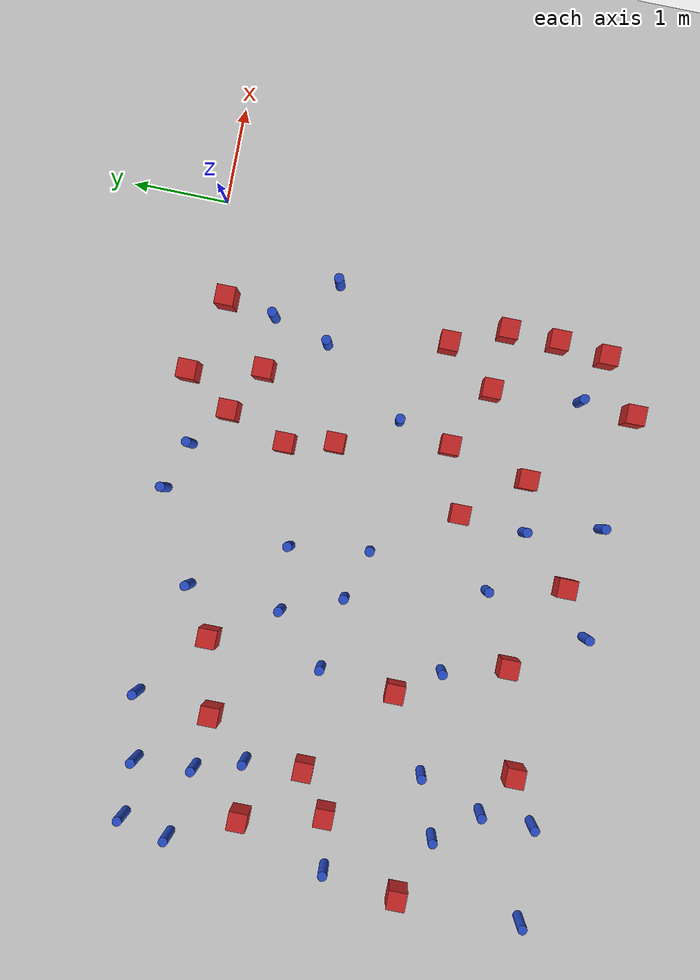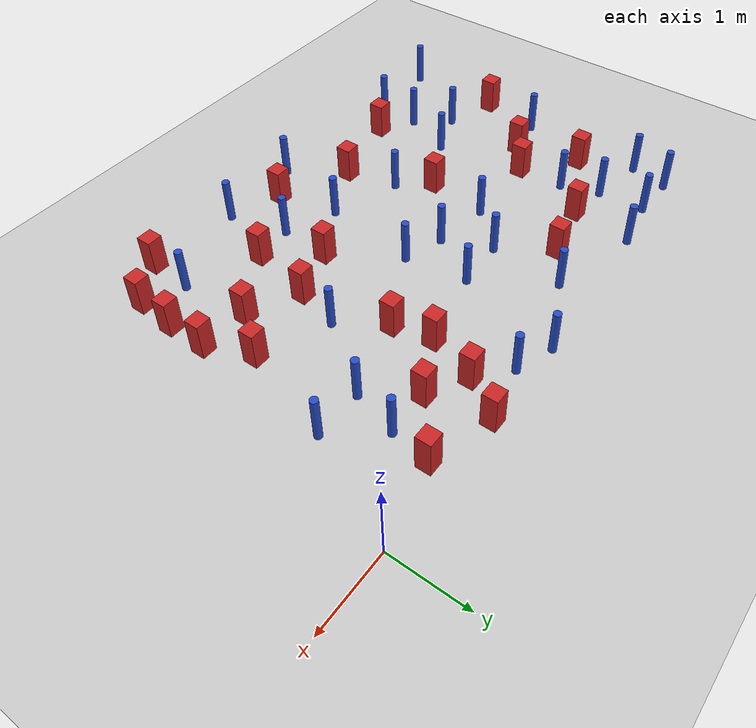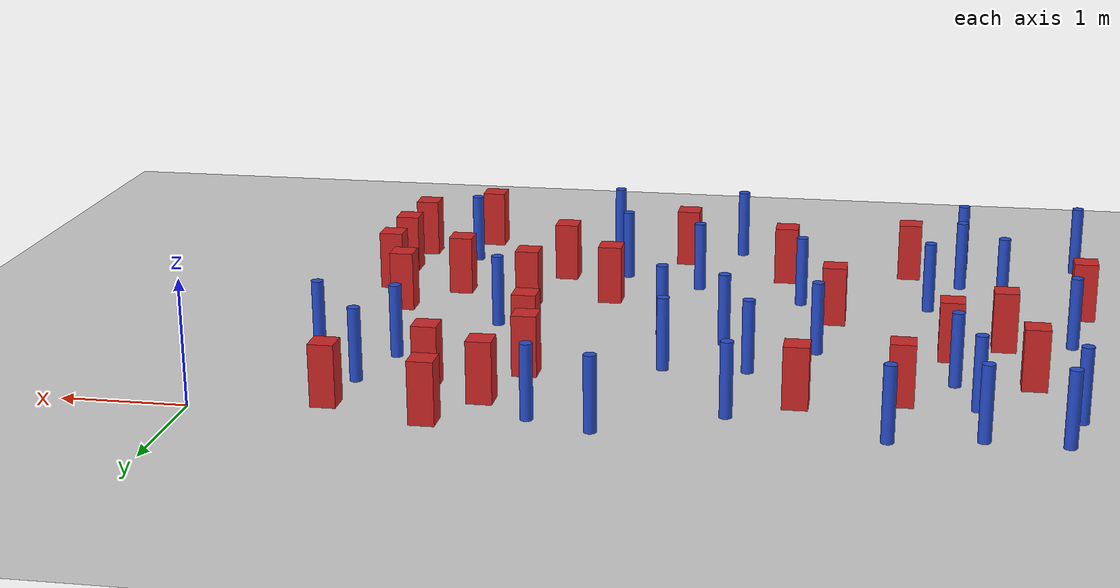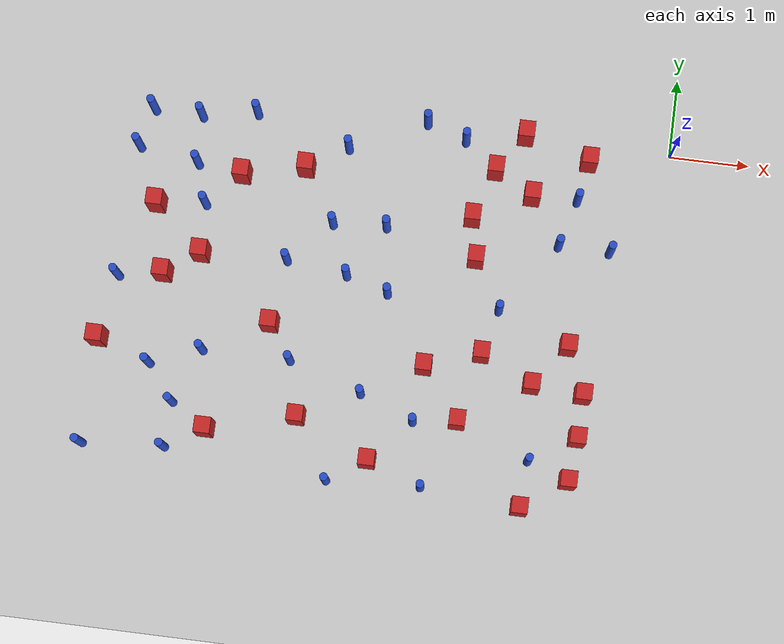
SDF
<sdf version="1.6">
 <world name="default">
  <model name="ground_plane">
   <static>1</static>
   <link name="link">
    <collision name="collision">
     <geometry><plane><normal>0 0 1</normal><size>100 100</size></plane></geometry>
     <surface><friction><ode><mu>100</mu><mu2>50</mu2></ode></friction></surface>
    </collision>
    <visual name="visual">
     <cast_shadows>0</cast_shadows>
     <geometry><plane><normal>0 0 1</normal><size>100 100</size></plane></geometry>
     <material>
      <ambient>1.0 1.0 1.0 1.0</ambient>
      <diffuse>0.8 0.8 0.8 1.0</diffuse>
      <specular>0.01 0.01 0.01 1.000000</specular>
     </material>
    </visual>
   </link>
  </model>
  <model name="square_post_obstacle3">
   <static>true</static>
   <pose>-0.789458256062 -3.69819431889 1.91545236811e-07 -7.35059704564e-06 1.12565212e-07 2.39332434364e-05</pose>
   <link name="link">
    <pose>0 0 0.25 0 -0 0</pose>
    <inertial>
     <mass>100</mass>
     <inertia>
      <ixx>0.166667</ixx>
      <ixy>0</ixy>
      <ixz>0</ixz>
      <iyy>0.166667</iyy>
      <iyz>0</iyz>
      <izz>0.166667</izz>
     </inertia>
    </inertial>
    <collision name="collision"><geometry><box><size>.2 .2 .5</size></box></geometry></collision>
    <visual name="visual">
     <geometry><box><size>.2 .2 .5</size></box></geometry>
     <material>
      <script><name>Gazebo/Red</name><uri>file://media/materials/scripts/gazebo.material</uri></script>
     </material>
    </visual>
   </link>
  </model>
  <model name="pole_obstacle7">
   <static>true</static>
   <pose>-5.22169933292 -0.105891624852 7.38925637345e-09 -8.47170692799e-08 1.24976765039e-08 -1.74513093019e-07</pose>
   <link name="link">
    <pose>0 0 0.3 0 -0 0</pose>
    <inertial>
     <mass>1</mass>
     <inertia><ixx>0.145833</ixx><ixy>0</ixy><ixz>0</ixz><iyy>0.145833</iyy><iyz>0</iyz><izz>0.125</izz></inertia>
    </inertial>
    <collision name="collision">
     <geometry><cylinder><radius>0.05</radius><length>.6</length></cylinder></geometry>
    </collision>
    <visual name="visual">
     <geometry><cylinder><radius>0.05</radius><length>.6</length></cylinder></geometry>
     <material>
      <script><name>Gazebo/Blue</name><uri>file://media/materials/scripts/gazebo.material</uri></script>
     </material>
    </visual>
   </link>
  </model>
  <model name="square_post_obstacle13">
   <static>true</static>
   <pose>-1.41700734164 -3.11351786145 1.91545236811e-07 -7.35059704564e-06 1.12565212e-07 2.39332434364e-05</pose>
   <link name="link">
    <pose>0 0 0.25 0 -0 0</pose>
    <inertial>
     <mass>100</mass>
     <inertia>
      <ixx>0.166667</ixx>
      <ixy>0</ixy>
      <ixz>0</ixz>
      <iyy>0.166667</iyy>
      <iyz>0</iyz>
      <izz>0.166667</izz>
     </inertia>
    </inertial>
    <collision name="collision"><geometry><box><size>.2 .2 .5</size></box></geometry></collision>
    <visual name="visual">
     <geometry><box><size>.2 .2 .5</size></box></geometry>
     <material>
      <script><name>Gazebo/Red</name><uri>file://media/materials/scripts/gazebo.material</uri></script>
     </material>
    </visual>
   </link>
  </model>
  <model name="square_post_obstacle22">
   <static>true</static>
   <pose>-2.26513360312 -3.66411039901 1.91545236811e-07 -7.35059704564e-06 1.12565212e-07 2.39332434364e-05</pose>
   <link name="link">
    <pose>0 0 0.25 0 -0 0</pose>
    <inertial>
     <mass>100</mass>
     <inertia>
      <ixx>0.166667</ixx>
      <ixy>0</ixy>
      <ixz>0</ixz>
      <iyy>0.166667</iyy>
      <iyz>0</iyz>
      <izz>0.166667</izz>
     </inertia>
    </inertial>
    <collision name="collision"><geometry><box><size>.2 .2 .5</size></box></geometry></collision>
    <visual name="visual">
     <geometry><box><size>.2 .2 .5</size></box></geometry>
     <material>
      <script><name>Gazebo/Red</name><uri>file://media/materials/scripts/gazebo.material</uri></script>
     </material>
    </visual>
   </link>
  </model>
  <model name="pole_obstacle14">
   <static>true</static>
   <pose>-2.80480990829 -3.74324165392 7.38925637345e-09 -8.47170692798e-08 1.24976764939e-08 -1.74513093025e-07</pose>
   <link name="link">
    <pose>0 0 0.3 0 -0 0</pose>
    <inertial>
     <mass>1</mass>
     <inertia><ixx>0.145833</ixx><ixy>0</ixy><ixz>0</ixz><iyy>0.145833</iyy><iyz>0</iyz><izz>0.125</izz></inertia>
    </inertial>
    <collision name="collision">
     <geometry><cylinder><radius>0.05</radius><length>.6</length></cylinder></geometry>
    </collision>
    <visual name="visual">
     <geometry><cylinder><radius>0.05</radius><length>.6</length></cylinder></geometry>
     <material>
      <script><name>Gazebo/Blue</name><uri>file://media/materials/scripts/gazebo.material</uri></script>
     </material>
    </visual>
   </link>
  </model>
  <model name="pole_obstacle17">
   <static>true</static>
   <pose>-1.91725916529 -2.24138637136 7.38925637345e-09 -8.47170692799e-08 1.24976765053e-08 -1.74513093017e-07</pose>
   <link name="link">
    <pose>0 0 0.3 0 -0 0</pose>
    <inertial>
     <mass>1</mass>
     <inertia><ixx>0.145833</ixx><ixy>0</ixy><ixz>0</ixz><iyy>0.145833</iyy><iyz>0</iyz><izz>0.125</izz></inertia>
    </inertial>
    <collision name="collision">
     <geometry><cylinder><radius>0.05</radius><length>.6</length></cylinder></geometry>
    </collision>
    <visual name="visual">
     <geometry><cylinder><radius>0.05</radius><length>.6</length></cylinder></geometry>
     <material>
      <script><name>Gazebo/Blue</name><uri>file://media/materials/scripts/gazebo.material</uri></script>
     </material>
    </visual>
   </link>
  </model>
  <model name="pole_obstacle18">
   <static>true</static>
   <pose>-6.63146007485 -0.71086996158 7.38925637345e-09 -8.47170692799e-08 1.24976765038e-08 -1.74513093018e-07</pose>
   <link name="link">
    <pose>0 0 0.3 0 -0 0</pose>
    <inertial>
     <mass>1</mass>
     <inertia><ixx>0.145833</ixx><ixy>0</ixy><ixz>0</ixz><iyy>0.145833</iyy><iyz>0</iyz><izz>0.125</izz></inertia>
    </inertial>
    <collision name="collision">
     <geometry><cylinder><radius>0.05</radius><length>.6</length></cylinder></geometry>
    </collision>
    <visual name="visual">
     <geometry><cylinder><radius>0.05</radius><length>.6</length></cylinder></geometry>
     <material>
      <script><name>Gazebo/Blue</name><uri>file://media/materials/scripts/gazebo.material</uri></script>
     </material>
    </visual>
   </link>
  </model>
  <model name="square_post_obstacle40">
   <static>true</static>
   <pose>-2.16263154472 -0.473142422719 1.91545236811e-07 -7.35059704564e-06 1.12565212e-07 2.39332434364e-05</pose>
   <link name="link">
    <pose>0 0 0.25 0 -0 0</pose>
    <inertial>
     <mass>100</mass>
     <inertia>
      <ixx>0.166667</ixx>
      <ixy>0</ixy>
      <ixz>0</ixz>
      <iyy>0.166667</iyy>
      <iyz>0</iyz>
      <izz>0.166667</izz>
     </inertia>
    </inertial>
    <collision name="collision"><geometry><box><size>.2 .2 .5</size></box></geometry></collision>
    <visual name="visual">
     <geometry><box><size>.2 .2 .5</size></box></geometry>
     <material>
      <script><name>Gazebo/Red</name><uri>file://media/materials/scripts/gazebo.material</uri></script>
     </material>
    </visual>
   </link>
  </model>
  <model name="square_post_obstacle54">
   <static>true</static>
   <pose>-4.22077732665 -3.85012642993 1.91545236811e-07 -7.35059704564e-06 1.12565212e-07 2.39332434364e-05</pose>
   <link name="link">
    <pose>0 0 0.25 0 -0 0</pose>
    <inertial>
     <mass>100</mass>
     <inertia>
      <ixx>0.166667</ixx>
      <ixy>0</ixy>
      <ixz>0</ixz>
      <iyy>0.166667</iyy>
      <iyz>0</iyz>
      <izz>0.166667</izz>
     </inertia>
    </inertial>
    <collision name="collision"><geometry><box><size>.2 .2 .5</size></box></geometry></collision>
    <visual name="visual">
     <geometry><box><size>.2 .2 .5</size></box></geometry>
     <material>
      <script><name>Gazebo/Red</name><uri>file://media/materials/scripts/gazebo.material</uri></script>
     </material>
    </visual>
   </link>
  </model>
  <model name="square_post_obstacle57">
   <static>true</static>
   <pose>-4.70037765385 -2.74377616056 1.91545236811e-07 -7.35059704564e-06 1.12565212e-07 2.39332434364e-05</pose>
   <link name="link">
    <pose>0 0 0.25 0 -0 0</pose>
    <inertial>
     <mass>100</mass>
     <inertia>
      <ixx>0.166667</ixx>
      <ixy>0</ixy>
      <ixz>0</ixz>
      <iyy>0.166667</iyy>
      <iyz>0</iyz>
      <izz>0.166667</izz>
     </inertia>
    </inertial>
    <collision name="collision"><geometry><box><size>.2 .2 .5</size></box></geometry></collision>
    <visual name="visual">
     <geometry><box><size>.2 .2 .5</size></box></geometry>
     <material>
      <script><name>Gazebo/Red</name><uri>file://media/materials/scripts/gazebo.material</uri></script>
     </material>
    </visual>
   </link>
  </model>
  <model name="pole_obstacle60">
   <static>true</static>
   <pose>-5.87558136819 -0.84293087153 7.38925637345e-09 -8.47170692799e-08 1.24976765038e-08 -1.74513093018e-07</pose>
   <link name="link">
    <pose>0 0 0.3 0 -0 0</pose>
    <inertial>
     <mass>1</mass>
     <inertia><ixx>0.145833</ixx><ixy>0</ixy><ixz>0</ixz><iyy>0.145833</iyy><iyz>0</iyz><izz>0.125</izz></inertia>
    </inertial>
    <collision name="collision">
     <geometry><cylinder><radius>0.05</radius><length>.6</length></cylinder></geometry>
    </collision>
    <visual name="visual">
     <geometry><cylinder><radius>0.05</radius><length>.6</length></cylinder></geometry>
     <material>
      <script><name>Gazebo/Blue</name><uri>file://media/materials/scripts/gazebo.material</uri></script>
     </material>
    </visual>
   </link>
  </model>
  <model name="square_post_obstacle63">
   <static>true</static>
   <pose>-4.51954298545 -0.729150470644 1.91545236811e-07 -7.35059704564e-06 1.12565212e-07 2.39332434364e-05</pose>
   <link name="link">
    <pose>0 0 0.25 0 -0 0</pose>
    <inertial>
     <mass>100</mass>
     <inertia>
      <ixx>0.166667</ixx>
      <ixy>0</ixy>
      <ixz>0</ixz>
      <iyy>0.166667</iyy>
      <iyz>0</iyz>
      <izz>0.166667</izz>
     </inertia>
    </inertial>
    <collision name="collision"><geometry><box><size>.2 .2 .5</size></box></geometry></collision>
    <visual name="visual">
     <geometry><box><size>.2 .2 .5</size></box></geometry>
     <material>
      <script><name>Gazebo/Red</name><uri>file://media/materials/scripts/gazebo.material</uri></script>
     </material>
    </visual>
   </link>
  </model>
  <model name="pole_obstacle61">
   <static>true</static>
   <pose>-5.76070533934 -3.85977856652 7.38925637345e-09 -8.47170692798e-08 1.24976764937e-08 -1.74513093023e-07</pose>
   <link name="link">
    <pose>0 0 0.3 0 -0 0</pose>
    <inertial>
     <mass>1</mass>
     <inertia><ixx>0.145833</ixx><ixy>0</ixy><ixz>0</ixz><iyy>0.145833</iyy><iyz>0</iyz><izz>0.125</izz></inertia>
    </inertial>
    <collision name="collision">
     <geometry><cylinder><radius>0.05</radius><length>.6</length></cylinder></geometry>
    </collision>
    <visual name="visual">
     <geometry><cylinder><radius>0.05</radius><length>.6</length></cylinder></geometry>
     <material>
      <script><name>Gazebo/Blue</name><uri>file://media/materials/scripts/gazebo.material</uri></script>
     </material>
    </visual>
   </link>
  </model>
  <model name="pole_obstacle63">
   <static>true</static>
   <pose>-4.02394877277 -0.415221039321 7.38925637345e-09 -8.47170692799e-08 1.24976765016e-08 -1.74513093019e-07</pose>
   <link name="link">
    <pose>0 0 0.3 0 -0 0</pose>
    <inertial>
     <mass>1</mass>
     <inertia><ixx>0.145833</ixx><ixy>0</ixy><ixz>0</ixz><iyy>0.145833</iyy><iyz>0</iyz><izz>0.125</izz></inertia>
    </inertial>
    <collision name="collision">
     <geometry><cylinder><radius>0.05</radius><length>.6</length></cylinder></geometry>
    </collision>
    <visual name="visual">
     <geometry><cylinder><radius>0.05</radius><length>.6</length></cylinder></geometry>
     <material>
      <script><name>Gazebo/Blue</name><uri>file://media/materials/scripts/gazebo.material</uri></script>
     </material>
    </visual>
   </link>
  </model>
  <model name="square_post_obstacle66">
   <static>true</static>
   <pose>-2.38029002942 -1.11211313398 1.91545236811e-07 -7.35059704564e-06 1.12565212e-07 2.39332434364e-05</pose>
   <link name="link">
    <pose>0 0 0.25 0 -0 0</pose>
    <inertial>
     <mass>100</mass>
     <inertia>
      <ixx>0.166667</ixx>
      <ixy>0</ixy>
      <ixz>0</ixz>
      <iyy>0.166667</iyy>
      <iyz>0</iyz>
      <izz>0.166667</izz>
     </inertia>
    </inertial>
    <collision name="collision"><geometry><box><size>.2 .2 .5</size></box></geometry></collision>
    <visual name="visual">
     <geometry><box><size>.2 .2 .5</size></box></geometry>
     <material>
      <script><name>Gazebo/Red</name><uri>file://media/materials/scripts/gazebo.material</uri></script>
     </material>
    </visual>
   </link>
  </model>
  <model name="pole_obstacle68">
   <static>true</static>
   <pose>-6.79056227725 -4.48885861719 7.38925637345e-09 -8.47170692796e-08 1.24976764786e-08 -1.74513093032e-07</pose>
   <link name="link">
    <pose>0 0 0.3 0 -0 0</pose>
    <inertial>
     <mass>1</mass>
     <inertia><ixx>0.145833</ixx><ixy>0</ixy><ixz>0</ixz><iyy>0.145833</iyy><iyz>0</iyz><izz>0.125</izz></inertia>
    </inertial>
    <collision name="collision">
     <geometry><cylinder><radius>0.05</radius><length>.6</length></cylinder></geometry>
    </collision>
    <visual name="visual">
     <geometry><cylinder><radius>0.05</radius><length>.6</length></cylinder></geometry>
     <material>
      <script><name>Gazebo/Blue</name><uri>file://media/materials/scripts/gazebo.material</uri></script>
     </material>
    </visual>
   </link>
  </model>
  <model name="pole_obstacle71">
   <static>true</static>
   <pose>-3.84267312091 -2.03474733109 7.38925637345e-09 -8.471706928e-08 1.2497676511e-08 -1.74513093015e-07</pose>
   <link name="link">
    <pose>0 0 0.3 0 -0 0</pose>
    <inertial>
     <mass>1</mass>
     <inertia><ixx>0.145833</ixx><ixy>0</ixy><ixz>0</ixz><iyy>0.145833</iyy><iyz>0</iyz><izz>0.125</izz></inertia>
    </inertial>
    <collision name="collision">
     <geometry><cylinder><radius>0.05</radius><length>.6</length></cylinder></geometry>
    </collision>
    <visual name="visual">
     <geometry><cylinder><radius>0.05</radius><length>.6</length></cylinder></geometry>
     <material>
      <script><name>Gazebo/Blue</name><uri>file://media/materials/scripts/gazebo.material</uri></script>
     </material>
    </visual>
   </link>
  </model>
  <model name="pole_obstacle75">
   <static>true</static>
   <pose>-3.76436221645 -4.58405866413 7.38925637345e-09 -8.47170692794e-08 1.24976764468e-08 -1.7451309304e-07</pose>
   <link name="link">
    <pose>0 0 0.3 0 -0 0</pose>
    <inertial>
     <mass>1</mass>
     <inertia><ixx>0.145833</ixx><ixy>0</ixy><ixz>0</ixz><iyy>0.145833</iyy><iyz>0</iyz><izz>0.125</izz></inertia>
    </inertial>
    <collision name="collision">
     <geometry><cylinder><radius>0.05</radius><length>.6</length></cylinder></geometry>
    </collision>
    <visual name="visual">
     <geometry><cylinder><radius>0.05</radius><length>.6</length></cylinder></geometry>
     <material>
      <script><name>Gazebo/Blue</name><uri>file://media/materials/scripts/gazebo.material</uri></script>
     </material>
    </visual>
   </link>
  </model>
  <model name="pole_obstacle79">
   <static>true</static>
   <pose>-4.603959515 -1.93403306076 7.38925637345e-09 -8.471706928e-08 1.24976765134e-08 -1.74513093015e-07</pose>
   <link name="link">
    <pose>0 0 0.3 0 -0 0</pose>
    <inertial>
     <mass>1</mass>
     <inertia><ixx>0.145833</ixx><ixy>0</ixy><ixz>0</ixz><iyy>0.145833</iyy><iyz>0</iyz><izz>0.125</izz></inertia>
    </inertial>
    <collision name="collision">
     <geometry><cylinder><radius>0.05</radius><length>.6</length></cylinder></geometry>
    </collision>
    <visual name="visual">
     <geometry><cylinder><radius>0.05</radius><length>.6</length></cylinder></geometry>
     <material>
      <script><name>Gazebo/Blue</name><uri>file://media/materials/scripts/gazebo.material</uri></script>
     </material>
    </visual>
   </link>
  </model>
  <model name="square_post_obstacle79">
   <static>true</static>
   <pose>-1.02066085679 -2.58645340985 1.91545236811e-07 -7.35059704564e-06 1.12565212e-07 2.39332434364e-05</pose>
   <link name="link">
    <pose>0 0 0.25 0 -0 0</pose>
    <inertial>
     <mass>100</mass>
     <inertia>
      <ixx>0.166667</ixx>
      <ixy>0</ixy>
      <ixz>0</ixz>
      <iyy>0.166667</iyy>
      <iyz>0</iyz>
      <izz>0.166667</izz>
     </inertia>
    </inertial>
    <collision name="collision"><geometry><box><size>.2 .2 .5</size></box></geometry></collision>
    <visual name="visual">
     <geometry><box><size>.2 .2 .5</size></box></geometry>
     <material>
      <script><name>Gazebo/Red</name><uri>file://media/materials/scripts/gazebo.material</uri></script>
     </material>
    </visual>
   </link>
  </model>
  <model name="pole_obstacle81">
   <static>true</static>
   <pose>-5.91094092325 -0.225091668777 7.38925637345e-09 -8.471706928e-08 1.24976765089e-08 -1.74513093017e-07</pose>
   <link name="link">
    <pose>0 0 0.3 0 -0 0</pose>
    <inertial>
     <mass>1</mass>
     <inertia><ixx>0.145833</ixx><ixy>0</ixy><ixz>0</ixz><iyy>0.145833</iyy><iyz>0</iyz><izz>0.125</izz></inertia>
    </inertial>
    <collision name="collision">
     <geometry><cylinder><radius>0.05</radius><length>.6</length></cylinder></geometry>
    </collision>
    <visual name="visual">
     <geometry><cylinder><radius>0.05</radius><length>.6</length></cylinder></geometry>
     <material>
      <script><name>Gazebo/Blue</name><uri>file://media/materials/scripts/gazebo.material</uri></script>
     </material>
    </visual>
   </link>
  </model>
  <model name="pole_obstacle87">
   <static>true</static>
   <pose>-3.48043219241 -3.47983917636 7.38925637345e-09 -8.47170692798e-08 1.24976764939e-08 -1.74513093025e-07</pose>
   <link name="link">
    <pose>0 0 0.3 0 -0 0</pose>
    <inertial>
     <mass>1</mass>
     <inertia><ixx>0.145833</ixx><ixy>0</ixy><ixz>0</ixz><iyy>0.145833</iyy><iyz>0</iyz><izz>0.125</izz></inertia>
    </inertial>
    <collision name="collision">
     <geometry><cylinder><radius>0.05</radius><length>.6</length></cylinder></geometry>
    </collision>
    <visual name="visual">
     <geometry><cylinder><radius>0.05</radius><length>.6</length></cylinder></geometry>
     <material>
      <script><name>Gazebo/Blue</name><uri>file://media/materials/scripts/gazebo.material</uri></script>
     </material>
    </visual>
   </link>
  </model>
  <model name="pole_obstacle89">
   <static>true</static>
   <pose>-6.65588495522 -2.37620966974 7.38925637345e-09 -8.47170692798e-08 1.24976764937e-08 -1.74513093023e-07</pose>
   <link name="link">
    <pose>0 0 0.3 0 -0 0</pose>
    <inertial>
     <mass>1</mass>
     <inertia><ixx>0.145833</ixx><ixy>0</ixy><ixz>0</ixz><iyy>0.145833</iyy><iyz>0</iyz><izz>0.125</izz></inertia>
    </inertial>
    <collision name="collision">
     <geometry><cylinder><radius>0.05</radius><length>.6</length></cylinder></geometry>
    </collision>
    <visual name="visual">
     <geometry><cylinder><radius>0.05</radius><length>.6</length></cylinder></geometry>
     <material>
      <script><name>Gazebo/Blue</name><uri>file://media/materials/scripts/gazebo.material</uri></script>
     </material>
    </visual>
   </link>
  </model>
  <model name="square_post_obstacle87">
   <static>true</static>
   <pose>-2.07019115002 -2.80343000493 1.91545236811e-07 -7.35059704564e-06 1.12565212e-07 2.39332434364e-05</pose>
   <link name="link">
    <pose>0 0 0.25 0 -0 0</pose>
    <inertial>
     <mass>100</mass>
     <inertia>
      <ixx>0.166667</ixx>
      <ixy>0</ixy>
      <ixz>0</ixz>
      <iyy>0.166667</iyy>
      <iyz>0</iyz>
      <izz>0.166667</izz>
     </inertia>
    </inertial>
    <collision name="collision"><geometry><box><size>.2 .2 .5</size></box></geometry></collision>
    <visual name="visual">
     <geometry><box><size>.2 .2 .5</size></box></geometry>
     <material>
      <script><name>Gazebo/Red</name><uri>file://media/materials/scripts/gazebo.material</uri></script>
     </material>
    </visual>
   </link>
  </model>
  <model name="pole_obstacle104">
   <static>true</static>
   <pose>-2.57503978573 -0.140216862907 7.38925637345e-09 -8.471706928e-08 1.24976765208e-08 -1.7451309301e-07</pose>
   <link name="link">
    <pose>0 0 0.3 0 -0 0</pose>
    <inertial>
     <mass>1</mass>
     <inertia><ixx>0.145833</ixx><ixy>0</ixy><ixz>0</ixz><iyy>0.145833</iyy><iyz>0</iyz><izz>0.125</izz></inertia>
    </inertial>
    <collision name="collision">
     <geometry><cylinder><radius>0.05</radius><length>.6</length></cylinder></geometry>
    </collision>
    <visual name="visual">
     <geometry><cylinder><radius>0.05</radius><length>.6</length></cylinder></geometry>
     <material>
      <script><name>Gazebo/Blue</name><uri>file://media/materials/scripts/gazebo.material</uri></script>
     </material>
    </visual>
   </link>
  </model>
  <model name="square_post_obstacle97">
   <static>true</static>
   <pose>-1.39618194712 -4.61724965366 1.91545236811e-07 -7.35059704564e-06 1.12565212e-07 2.39332434364e-05</pose>
   <link name="link">
    <pose>0 0 0.25 0 -0 0</pose>
    <inertial>
     <mass>100</mass>
     <inertia>
      <ixx>0.166667</ixx>
      <ixy>0</ixy>
      <ixz>0</ixz>
      <iyy>0.166667</iyy>
      <iyz>0</iyz>
      <izz>0.166667</izz>
     </inertia>
    </inertial>
    <collision name="collision"><geometry><box><size>.2 .2 .5</size></box></geometry></collision>
    <visual name="visual">
     <geometry><box><size>.2 .2 .5</size></box></geometry>
     <material>
      <script><name>Gazebo/Red</name><uri>file://media/materials/scripts/gazebo.material</uri></script>
     </material>
    </visual>
   </link>
  </model>
  <model name="pole_obstacle111">
   <static>true</static>
   <pose>-4.39708406522 -3.17922845208 7.38925637345e-09 -8.47170692798e-08 1.24976764937e-08 -1.74513093023e-07</pose>
   <link name="link">
    <pose>0 0 0.3 0 -0 0</pose>
    <inertial>
     <mass>1</mass>
     <inertia><ixx>0.145833</ixx><ixy>0</ixy><ixz>0</ixz><iyy>0.145833</iyy><iyz>0</iyz><izz>0.125</izz></inertia>
    </inertial>
    <collision name="collision">
     <geometry><cylinder><radius>0.05</radius><length>.6</length></cylinder></geometry>
    </collision>
    <visual name="visual">
     <geometry><cylinder><radius>0.05</radius><length>.6</length></cylinder></geometry>
     <material>
      <script><name>Gazebo/Blue</name><uri>file://media/materials/scripts/gazebo.material</uri></script>
     </material>
    </visual>
   </link>
  </model>
  <model name="pole_obstacle112">
   <static>true</static>
   <pose>-6.51792841266 -0.208156885941 7.38925637345e-09 -8.471706928e-08 1.24976765089e-08 -1.74513093017e-07</pose>
   <link name="link">
    <pose>0 0 0.3 0 -0 0</pose>
    <inertial>
     <mass>1</mass>
     <inertia><ixx>0.145833</ixx><ixy>0</ixy><ixz>0</ixz><iyy>0.145833</iyy><iyz>0</iyz><izz>0.125</izz></inertia>
    </inertial>
    <collision name="collision">
     <geometry><cylinder><radius>0.05</radius><length>.6</length></cylinder></geometry>
    </collision>
    <visual name="visual">
     <geometry><cylinder><radius>0.05</radius><length>.6</length></cylinder></geometry>
     <material>
      <script><name>Gazebo/Blue</name><uri>file://media/materials/scripts/gazebo.material</uri></script>
     </material>
    </visual>
   </link>
  </model>
  <model name="square_post_obstacle101">
   <static>true</static>
   <pose>-1.83757877941 0.0181960202355 1.91545236811e-07 -7.35059704564e-06 1.12565212e-07 2.39332434364e-05</pose>
   <link name="link">
    <pose>0 0 0.25 0 -0 0</pose>
    <inertial>
     <mass>100</mass>
     <inertia>
      <ixx>0.166667</ixx>
      <ixy>0</ixy>
      <ixz>0</ixz>
      <iyy>0.166667</iyy>
      <iyz>0</iyz>
      <izz>0.166667</izz>
     </inertia>
    </inertial>
    <collision name="collision"><geometry><box><size>.2 .2 .5</size></box></geometry></collision>
    <visual name="visual">
     <geometry><box><size>.2 .2 .5</size></box></geometry>
     <material>
      <script><name>Gazebo/Red</name><uri>file://media/materials/scripts/gazebo.material</uri></script>
     </material>
    </visual>
   </link>
  </model>
  <model name="pole_obstacle118">
   <static>true</static>
   <pose>-6.11167345364 -3.41810286204 7.38925637345e-09 -8.47170692798e-08 1.24976764937e-08 -1.74513093023e-07</pose>
   <link name="link">
    <pose>0 0 0.3 0 -0 0</pose>
    <inertial>
     <mass>1</mass>
     <inertia><ixx>0.145833</ixx><ixy>0</ixy><ixz>0</ixz><iyy>0.145833</iyy><iyz>0</iyz><izz>0.125</izz></inertia>
    </inertial>
    <collision name="collision">
     <geometry><cylinder><radius>0.05</radius><length>.6</length></cylinder></geometry>
    </collision>
    <visual name="visual">
     <geometry><cylinder><radius>0.05</radius><length>.6</length></cylinder></geometry>
     <material>
      <script><name>Gazebo/Blue</name><uri>file://media/materials/scripts/gazebo.material</uri></script>
     </material>
    </visual>
   </link>
  </model>
  <model name="square_post_obstacle113">
   <static>true</static>
   <pose>-6.10164676122 -2.27400857081 1.91545236811e-07 -7.35059704564e-06 1.12565212e-07 2.39332434364e-05</pose>
   <link name="link">
    <pose>0 0 0.25 0 -0 0</pose>
    <inertial>
     <mass>100</mass>
     <inertia>
      <ixx>0.166667</ixx>
      <ixy>0</ixy>
      <ixz>0</ixz>
      <iyy>0.166667</iyy>
      <iyz>0</iyz>
      <izz>0.166667</izz>
     </inertia>
    </inertial>
    <collision name="collision"><geometry><box><size>.2 .2 .5</size></box></geometry></collision>
    <visual name="visual">
     <geometry><box><size>.2 .2 .5</size></box></geometry>
     <material>
      <script><name>Gazebo/Red</name><uri>file://media/materials/scripts/gazebo.material</uri></script>
     </material>
    </visual>
   </link>
  </model>
  <model name="square_post_obstacle121">
   <static>true</static>
   <pose>-5.30776016372 -4.13235267316 1.91545236811e-07 -7.35059704564e-06 1.12565212e-07 2.39332434364e-05</pose>
   <link name="link">
    <pose>0 0 0.25 0 -0 0</pose>
    <inertial>
     <mass>100</mass>
     <inertia>
      <ixx>0.166667</ixx>
      <ixy>0</ixy>
      <ixz>0</ixz>
      <iyy>0.166667</iyy>
      <iyz>0</iyz>
      <izz>0.166667</izz>
     </inertia>
    </inertial>
    <collision name="collision"><geometry><box><size>.2 .2 .5</size></box></geometry></collision>
    <visual name="visual">
     <geometry><box><size>.2 .2 .5</size></box></geometry>
     <material>
      <script><name>Gazebo/Red</name><uri>file://media/materials/scripts/gazebo.material</uri></script>
     </material>
    </visual>
   </link>
  </model>
  <model name="square_post_obstacle130">
   <static>true</static>
   <pose>-1.01738174718 -0.222332675402 1.91545236811e-07 -7.35059704564e-06 1.12565212e-07 2.39332434364e-05</pose>
   <link name="link">
    <pose>0 0 0.25 0 -0 0</pose>
    <inertial>
     <mass>100</mass>
     <inertia>
      <ixx>0.166667</ixx>
      <ixy>0</ixy>
      <ixz>0</ixz>
      <iyy>0.166667</iyy>
      <iyz>0</iyz>
      <izz>0.166667</izz>
     </inertia>
    </inertial>
    <collision name="collision"><geometry><box><size>.2 .2 .5</size></box></geometry></collision>
    <visual name="visual">
     <geometry><box><size>.2 .2 .5</size></box></geometry>
     <material>
      <script><name>Gazebo/Red</name><uri>file://media/materials/scripts/gazebo.material</uri></script>
     </material>
    </visual>
   </link>
  </model>
  <model name="square_post_obstacle131">
   <static>true</static>
   <pose>-6.78243511563 -3.17791857887 1.91545236811e-07 -7.35059704564e-06 1.12565212e-07 2.39332434364e-05</pose>
   <link name="link">
    <pose>0 0 0.25 0 -0 0</pose>
    <inertial>
     <mass>100</mass>
     <inertia>
      <ixx>0.166667</ixx>
      <ixy>0</ixy>
      <ixz>0</ixz>
      <iyy>0.166667</iyy>
      <iyz>0</iyz>
      <izz>0.166667</izz>
     </inertia>
    </inertial>
    <collision name="collision"><geometry><box><size>.2 .2 .5</size></box></geometry></collision>
    <visual name="visual">
     <geometry><box><size>.2 .2 .5</size></box></geometry>
     <material>
      <script><name>Gazebo/Red</name><uri>file://media/materials/scripts/gazebo.material</uri></script>
     </material>
    </visual>
   </link>
  </model>
  <model name="pole_obstacle144">
   <static>true</static>
   <pose>-5.48568802623 -3.17789102376 7.38925637345e-09 -8.47170692798e-08 1.24976764937e-08 -1.74513093023e-07</pose>
   <link name="link">
    <pose>0 0 0.3 0 -0 0</pose>
    <inertial>
     <mass>1</mass>
     <inertia><ixx>0.145833</ixx><ixy>0</ixy><ixz>0</ixz><iyy>0.145833</iyy><iyz>0</iyz><izz>0.125</izz></inertia>
    </inertial>
    <collision name="collision">
     <geometry><cylinder><radius>0.05</radius><length>.6</length></cylinder></geometry>
    </collision>
    <visual name="visual">
     <geometry><cylinder><radius>0.05</radius><length>.6</length></cylinder></geometry>
     <material>
      <script><name>Gazebo/Blue</name><uri>file://media/materials/scripts/gazebo.material</uri></script>
     </material>
    </visual>
   </link>
  </model>
  <model name="square_post_obstacle136">
   <static>true</static>
   <pose>-6.30984612196 -1.40599888502 1.91545236811e-07 -7.35059704564e-06 1.12565212e-07 2.39332434364e-05</pose>
   <link name="link">
    <pose>0 0 0.25 0 -0 0</pose>
    <inertial>
     <mass>100</mass>
     <inertia>
      <ixx>0.166667</ixx>
      <ixy>0</ixy>
      <ixz>0</ixz>
      <iyy>0.166667</iyy>
      <iyz>0</iyz>
      <izz>0.166667</izz>
     </inertia>
    </inertial>
    <collision name="collision"><geometry><box><size>.2 .2 .5</size></box></geometry></collision>
    <visual name="visual">
     <geometry><box><size>.2 .2 .5</size></box></geometry>
     <material>
      <script><name>Gazebo/Red</name><uri>file://media/materials/scripts/gazebo.material</uri></script>
     </material>
    </visual>
   </link>
  </model>
  <model name="square_post_obstacle145">
   <static>true</static>
   <pose>-2.75347104223 -3.04309549824 1.91545236811e-07 -7.35059704564e-06 1.12565212e-07 2.39332434364e-05</pose>
   <link name="link">
    <pose>0 0 0.25 0 -0 0</pose>
    <inertial>
     <mass>100</mass>
     <inertia>
      <ixx>0.166667</ixx>
      <ixy>0</ixy>
      <ixz>0</ixz>
      <iyy>0.166667</iyy>
      <iyz>0</iyz>
      <izz>0.166667</izz>
     </inertia>
    </inertial>
    <collision name="collision"><geometry><box><size>.2 .2 .5</size></box></geometry></collision>
    <visual name="visual">
     <geometry><box><size>.2 .2 .5</size></box></geometry>
     <material>
      <script><name>Gazebo/Red</name><uri>file://media/materials/scripts/gazebo.material</uri></script>
     </material>
    </visual>
   </link>
  </model>
  <model name="square_post_obstacle150">
   <static>true</static>
   <pose>-5.6723262989 -1.96848615268 1.91545236811e-07 -7.35059704564e-06 1.12565212e-07 2.39332434364e-05</pose>
   <link name="link">
    <pose>0 0 0.25 0 -0 0</pose>
    <inertial>
     <mass>100</mass>
     <inertia>
      <ixx>0.166667</ixx>
      <ixy>0</ixy>
      <ixz>0</ixz>
      <iyy>0.166667</iyy>
      <iyz>0</iyz>
      <izz>0.166667</izz>
     </inertia>
    </inertial>
    <collision name="collision"><geometry><box><size>.2 .2 .5</size></box></geometry></collision>
    <visual name="visual">
     <geometry><box><size>.2 .2 .5</size></box></geometry>
     <material>
      <script><name>Gazebo/Red</name><uri>file://media/materials/scripts/gazebo.material</uri></script>
     </material>
    </visual>
   </link>
  </model>
  <model name="square_post_obstacle151">
   <static>true</static>
   <pose>-1.67395208986 -0.748788314328 1.91545236811e-07 -7.35059704564e-06 1.12565212e-07 2.39332434364e-05</pose>
   <link name="link">
    <pose>0 0 0.25 0 -0 0</pose>
    <inertial>
     <mass>100</mass>
     <inertia>
      <ixx>0.166667</ixx>
      <ixy>0</ixy>
      <ixz>0</ixz>
      <iyy>0.166667</iyy>
      <iyz>0</iyz>
      <izz>0.166667</izz>
     </inertia>
    </inertial>
    <collision name="collision"><geometry><box><size>.2 .2 .5</size></box></geometry></collision>
    <visual name="visual">
     <geometry><box><size>.2 .2 .5</size></box></geometry>
     <material>
      <script><name>Gazebo/Red</name><uri>file://media/materials/scripts/gazebo.material</uri></script>
     </material>
    </visual>
   </link>
  </model>
  <model name="pole_obstacle163">
   <static>true</static>
   <pose>-4.09572105512 -1.40433293924 7.38925637345e-09 -8.471706928e-08 1.24976765134e-08 -1.74513093015e-07</pose>
   <link name="link">
    <pose>0 0 0.3 0 -0 0</pose>
    <inertial>
     <mass>1</mass>
     <inertia><ixx>0.145833</ixx><ixy>0</ixy><ixz>0</ixz><iyy>0.145833</iyy><iyz>0</iyz><izz>0.125</izz></inertia>
    </inertial>
    <collision name="collision">
     <geometry><cylinder><radius>0.05</radius><length>.6</length></cylinder></geometry>
    </collision>
    <visual name="visual">
     <geometry><cylinder><radius>0.05</radius><length>.6</length></cylinder></geometry>
     <material>
      <script><name>Gazebo/Blue</name><uri>file://media/materials/scripts/gazebo.material</uri></script>
     </material>
    </visual>
   </link>
  </model>
  <model name="pole_obstacle164">
   <static>true</static>
   <pose>-3.42649262126 -1.36458117193 7.38925637345e-09 -8.47170692796e-08 1.24976764713e-08 -1.74513093037e-07</pose>
   <link name="link">
    <pose>0 0 0.3 0 -0 0</pose>
    <inertial>
     <mass>1</mass>
     <inertia><ixx>0.145833</ixx><ixy>0</ixy><ixz>0</ixz><iyy>0.145833</iyy><iyz>0</iyz><izz>0.125</izz></inertia>
    </inertial>
    <collision name="collision">
     <geometry><cylinder><radius>0.05</radius><length>.6</length></cylinder></geometry>
    </collision>
    <visual name="visual">
     <geometry><cylinder><radius>0.05</radius><length>.6</length></cylinder></geometry>
     <material>
      <script><name>Gazebo/Blue</name><uri>file://media/materials/scripts/gazebo.material</uri></script>
     </material>
    </visual>
   </link>
  </model>
  <model name="pole_obstacle166">
   <static>true</static>
   <pose>-5.70744884731 -1.34751544548 7.38925637345e-09 -8.471706928e-08 1.24976765134e-08 -1.74513093015e-07</pose>
   <link name="link">
    <pose>0 0 0.3 0 -0 0</pose>
    <inertial>
     <mass>1</mass>
     <inertia><ixx>0.145833</ixx><ixy>0</ixy><ixz>0</ixz><iyy>0.145833</iyy><iyz>0</iyz><izz>0.125</izz></inertia>
    </inertial>
    <collision name="collision">
     <geometry><cylinder><radius>0.05</radius><length>.6</length></cylinder></geometry>
    </collision>
    <visual name="visual">
     <geometry><cylinder><radius>0.05</radius><length>.6</length></cylinder></geometry>
     <material>
      <script><name>Gazebo/Blue</name><uri>file://media/materials/scripts/gazebo.material</uri></script>
     </material>
    </visual>
   </link>
  </model>
  <model name="square_post_obstacle163">
   <static>true</static>
   <pose>-0.846160792269 -4.22875503065 1.91545236811e-07 -7.35059704564e-06 1.12565212e-07 2.39332434364e-05</pose>
   <link name="link">
    <pose>0 0 0.25 0 -0 0</pose>
    <inertial>
     <mass>100</mass>
     <inertia>
      <ixx>0.166667</ixx>
      <ixy>0</ixy>
      <ixz>0</ixz>
      <iyy>0.166667</iyy>
      <iyz>0</iyz>
      <izz>0.166667</izz>
     </inertia>
    </inertial>
    <collision name="collision"><geometry><box><size>.2 .2 .5</size></box></geometry></collision>
    <visual name="visual">
     <geometry><box><size>.2 .2 .5</size></box></geometry>
     <material>
      <script><name>Gazebo/Red</name><uri>file://media/materials/scripts/gazebo.material</uri></script>
     </material>
    </visual>
   </link>
  </model>
  <model name="pole_obstacle180">
   <static>true</static>
   <pose>-2.61336808715 -4.52528133318 7.38925637345e-09 -8.47170692798e-08 1.24976765033e-08 -1.74513093019e-07</pose>
   <link name="link">
    <pose>0 0 0.3 0 -0 0</pose>
    <inertial>
     <mass>1</mass>
     <inertia><ixx>0.145833</ixx><ixy>0</ixy><ixz>0</ixz><iyy>0.145833</iyy><iyz>0</iyz><izz>0.125</izz></inertia>
    </inertial>
    <collision name="collision">
     <geometry><cylinder><radius>0.05</radius><length>.6</length></cylinder></geometry>
    </collision>
    <visual name="visual">
     <geometry><cylinder><radius>0.05</radius><length>.6</length></cylinder></geometry>
     <material>
      <script><name>Gazebo/Blue</name><uri>file://media/materials/scripts/gazebo.material</uri></script>
     </material>
    </visual>
   </link>
  </model>
  <model name="pole_obstacle183">
   <static>true</static>
   <pose>-0.633489044432 -1.34654574578 7.38925637345e-09 -8.47170692799e-08 1.24976765033e-08 -1.7451309302e-07</pose>
   <link name="link">
    <pose>0 0 0.3 0 -0 0</pose>
    <inertial>
     <mass>1</mass>
     <inertia><ixx>0.145833</ixx><ixy>0</ixy><ixz>0</ixz><iyy>0.145833</iyy><iyz>0</iyz><izz>0.125</izz></inertia>
    </inertial>
    <collision name="collision">
     <geometry><cylinder><radius>0.05</radius><length>.6</length></cylinder></geometry>
    </collision>
    <visual name="visual">
     <geometry><cylinder><radius>0.05</radius><length>.6</length></cylinder></geometry>
     <material>
      <script><name>Gazebo/Blue</name><uri>file://media/materials/scripts/gazebo.material</uri></script>
     </material>
    </visual>
   </link>
  </model>
  <model name="square_post_obstacle182">
   <static>true</static>
   <pose>-3.29338609066 -4.27376885663 1.91545236811e-07 -7.35059704564e-06 1.12565212e-07 2.39332434364e-05</pose>
   <link name="link">
    <pose>0 0 0.25 0 -0 0</pose>
    <inertial>
     <mass>100</mass>
     <inertia>
      <ixx>0.166667</ixx>
      <ixy>0</ixy>
      <ixz>0</ixz>
      <iyy>0.166667</iyy>
      <iyz>0</iyz>
      <izz>0.166667</izz>
     </inertia>
    </inertial>
    <collision name="collision"><geometry><box><size>.2 .2 .5</size></box></geometry></collision>
    <visual name="visual">
     <geometry><box><size>.2 .2 .5</size></box></geometry>
     <material>
      <script><name>Gazebo/Red</name><uri>file://media/materials/scripts/gazebo.material</uri></script>
     </material>
    </visual>
   </link>
  </model>
  <model name="pole_obstacle196">
   <static>true</static>
   <pose>-3.31056621534 -2.2014800564 7.38925637345e-09 -8.47170692798e-08 1.24976764939e-08 -1.74513093025e-07</pose>
   <link name="link">
    <pose>0 0 0.3 0 -0 0</pose>
    <inertial>
     <mass>1</mass>
     <inertia><ixx>0.145833</ixx><ixy>0</ixy><ixz>0</ixz><iyy>0.145833</iyy><iyz>0</iyz><izz>0.125</izz></inertia>
    </inertial>
    <collision name="collision">
     <geometry><cylinder><radius>0.05</radius><length>.6</length></cylinder></geometry>
    </collision>
    <visual name="visual">
     <geometry><cylinder><radius>0.05</radius><length>.6</length></cylinder></geometry>
     <material>
      <script><name>Gazebo/Blue</name><uri>file://media/materials/scripts/gazebo.material</uri></script>
     </material>
    </visual>
   </link>
  </model>
  <model name="pole_obstacle199">
   <static>true</static>
   <pose>-3.07923986327 0.0300230915623 7.38925637345e-09 -8.47170692796e-08 1.24976764751e-08 -1.74513093036e-07</pose>
   <link name="link">
    <pose>0 0 0.3 0 -0 0</pose>
    <inertial>
     <mass>1</mass>
     <inertia><ixx>0.145833</ixx><ixy>0</ixy><ixz>0</ixz><iyy>0.145833</iyy><iyz>0</iyz><izz>0.125</izz></inertia>
    </inertial>
    <collision name="collision">
     <geometry><cylinder><radius>0.05</radius><length>.6</length></cylinder></geometry>
    </collision>
    <visual name="visual">
     <geometry><cylinder><radius>0.05</radius><length>.6</length></cylinder></geometry>
     <material>
      <script><name>Gazebo/Blue</name><uri>file://media/materials/scripts/gazebo.material</uri></script>
     </material>
    </visual>
   </link>
  </model>
  <model name="pole_obstacle203">
   <static>true</static>
   <pose>-5.78022502946 -4.41731624478 7.38925637345e-09 -8.47170692796e-08 1.24976764786e-08 -1.74513093032e-07</pose>
   <link name="link">
    <pose>0 0 0.3 0 -0 0</pose>
    <inertial>
     <mass>1</mass>
     <inertia><ixx>0.145833</ixx><ixy>0</ixy><ixz>0</ixz><iyy>0.145833</iyy><iyz>0</iyz><izz>0.125</izz></inertia>
    </inertial>
    <collision name="collision">
     <geometry><cylinder><radius>0.05</radius><length>.6</length></cylinder></geometry>
    </collision>
    <visual name="visual">
     <geometry><cylinder><radius>0.05</radius><length>.6</length></cylinder></geometry>
     <material>
      <script><name>Gazebo/Blue</name><uri>file://media/materials/scripts/gazebo.material</uri></script>
     </material>
    </visual>
   </link>
  </model>
  <model name="pole_obstacle204">
   <static>true</static>
   <pose>-1.3508238018 -4.04826112754 7.38925637345e-09 -8.47170692799e-08 1.2497676503e-08 -1.74513093019e-07</pose>
   <link name="link">
    <pose>0 0 0.3 0 -0 0</pose>
    <inertial>
     <mass>1</mass>
     <inertia><ixx>0.145833</ixx><ixy>0</ixy><ixz>0</ixz><iyy>0.145833</iyy><iyz>0</iyz><izz>0.125</izz></inertia>
    </inertial>
    <collision name="collision">
     <geometry><cylinder><radius>0.05</radius><length>.6</length></cylinder></geometry>
    </collision>
    <visual name="visual">
     <geometry><cylinder><radius>0.05</radius><length>.6</length></cylinder></geometry>
     <material>
      <script><name>Gazebo/Blue</name><uri>file://media/materials/scripts/gazebo.material</uri></script>
     </material>
    </visual>
   </link>
  </model>
  <model name="pole_obstacle207">
   <static>true</static>
   <pose>-1.27454595844 -1.34111628273 7.38925637345e-09 -8.471706928e-08 1.24976765079e-08 -1.74513093017e-07</pose>
   <link name="link">
    <pose>0 0 0.3 0 -0 0</pose>
    <inertial>
     <mass>1</mass>
     <inertia><ixx>0.145833</ixx><ixy>0</ixy><ixz>0</ixz><iyy>0.145833</iyy><iyz>0</iyz><izz>0.125</izz></inertia>
    </inertial>
    <collision name="collision">
     <geometry><cylinder><radius>0.05</radius><length>.6</length></cylinder></geometry>
    </collision>
    <visual name="visual">
     <geometry><cylinder><radius>0.05</radius><length>.6</length></cylinder></geometry>
     <material>
      <script><name>Gazebo/Blue</name><uri>file://media/materials/scripts/gazebo.material</uri></script>
     </material>
    </visual>
   </link>
  </model>
  <model name="pole_obstacle219">
   <static>true</static>
   <pose>-1.10438288166 -0.741626053043 7.38925637345e-09 -8.47170692799e-08 1.24976765075e-08 -1.74513093017e-07</pose>
   <link name="link">
    <pose>0 0 0.3 0 -0 0</pose>
    <inertial>
     <mass>1</mass>
     <inertia><ixx>0.145833</ixx><ixy>0</ixy><ixz>0</ixz><iyy>0.145833</iyy><iyz>0</iyz><izz>0.125</izz></inertia>
    </inertial>
    <collision name="collision">
     <geometry><cylinder><radius>0.05</radius><length>.6</length></cylinder></geometry>
    </collision>
    <visual name="visual">
     <geometry><cylinder><radius>0.05</radius><length>.6</length></cylinder></geometry>
     <material>
      <script><name>Gazebo/Blue</name><uri>file://media/materials/scripts/gazebo.material</uri></script>
     </material>
    </visual>
   </link>
  </model>
  <model name="square_post_obstacle215">
   <static>true</static>
   <pose>-0.778340035195 -3.16277001192 1.91545236811e-07 -7.35059704564e-06 1.12565212e-07 2.39332434364e-05</pose>
   <link name="link">
    <pose>0 0 0.25 0 -0 0</pose>
    <inertial>
     <mass>100</mass>
     <inertia>
      <ixx>0.166667</ixx>
      <ixy>0</ixy>
      <ixz>0</ixz>
      <iyy>0.166667</iyy>
      <iyz>0</iyz>
      <izz>0.166667</izz>
     </inertia>
    </inertial>
    <collision name="collision"><geometry><box><size>.2 .2 .5</size></box></geometry></collision>
    <visual name="visual">
     <geometry><box><size>.2 .2 .5</size></box></geometry>
     <material>
      <script><name>Gazebo/Red</name><uri>file://media/materials/scripts/gazebo.material</uri></script>
     </material>
    </visual>
   </link>
  </model>
  <model name="square_post_obstacle220">
   <static>true</static>
   <pose>-2.2773000352 -1.62843001192 1.91545236811e-07 -7.35059704564e-06 1.12565212e-07 2.39332434364e-05</pose>
   <link name="link">
    <pose>0 0 0.25 0 -0 0</pose>
    <inertial>
     <mass>100</mass>
     <inertia>
      <ixx>0.166667</ixx>
      <ixy>0</ixy>
      <ixz>0</ixz>
      <iyy>0.166667</iyy>
      <iyz>0</iyz>
      <izz>0.166667</izz>
     </inertia>
    </inertial>
    <collision name="collision"><geometry><box><size>.2 .2 .5</size></box></geometry></collision>
    <visual name="visual">
     <geometry><box><size>.2 .2 .5</size></box></geometry>
     <material>
      <script><name>Gazebo/Red</name><uri>file://media/materials/scripts/gazebo.material</uri></script>
     </material>
    </visual>
   </link>
  </model>
  <model name="square_post_obstacle223">
   <static>true</static>
   <pose>-5.3024900352 -0.908372011919 1.91545236811e-07 -7.35059704564e-06 1.12565212e-07 2.39332434364e-05</pose>
   <link name="link">
    <pose>0 0 0.25 0 -0 0</pose>
    <inertial>
     <mass>100</mass>
     <inertia>
      <ixx>0.166667</ixx>
      <ixy>0</ixy>
      <ixz>0</ixz>
      <iyy>0.166667</iyy>
      <iyz>0</iyz>
      <izz>0.166667</izz>
     </inertia>
    </inertial>
    <collision name="collision"><geometry><box><size>.2 .2 .5</size></box></geometry></collision>
    <visual name="visual">
     <geometry><box><size>.2 .2 .5</size></box></geometry>
     <material>
      <script><name>Gazebo/Red</name><uri>file://media/materials/scripts/gazebo.material</uri></script>
     </material>
    </visual>
   </link>
  </model>
 </world>
</sdf>
